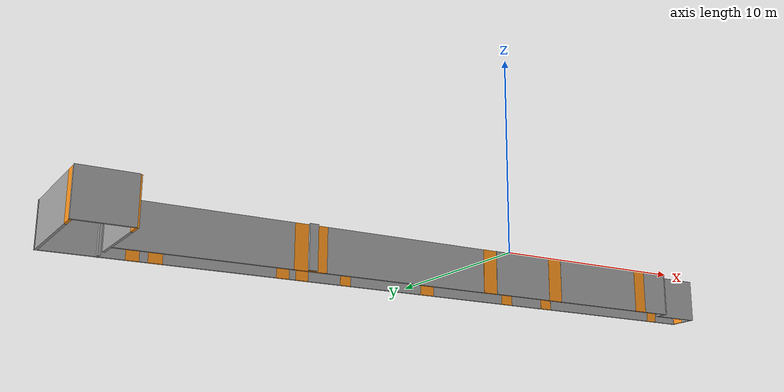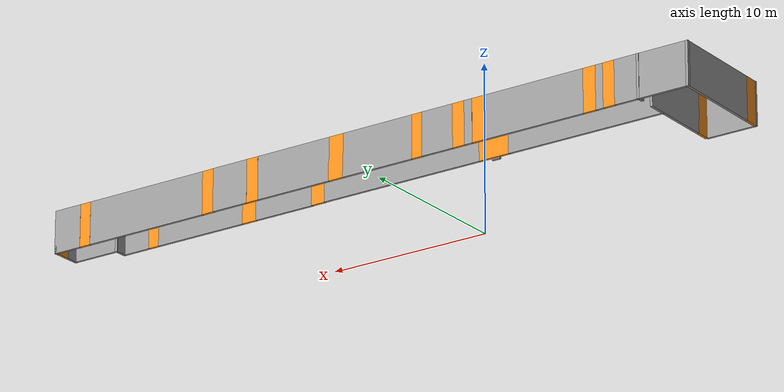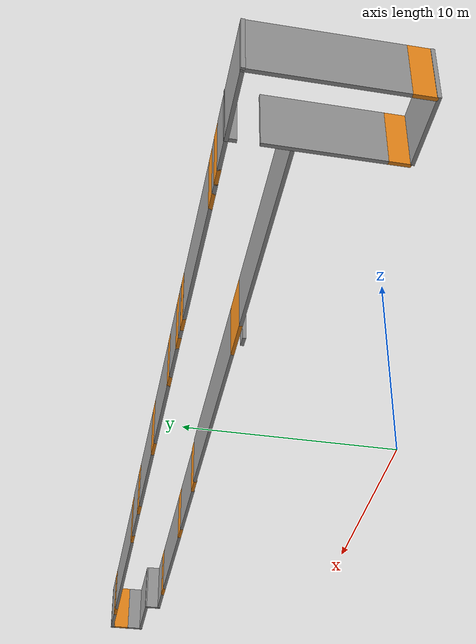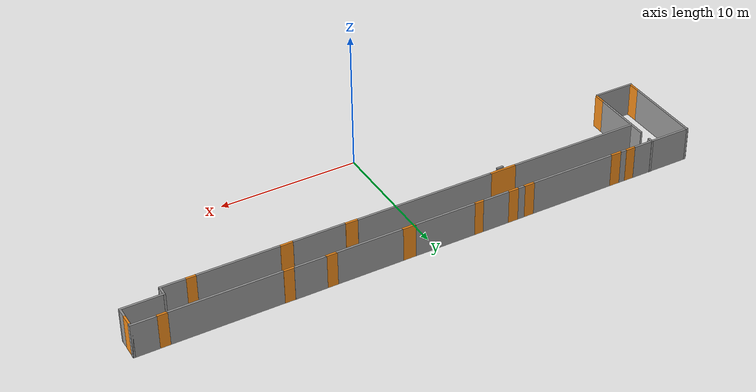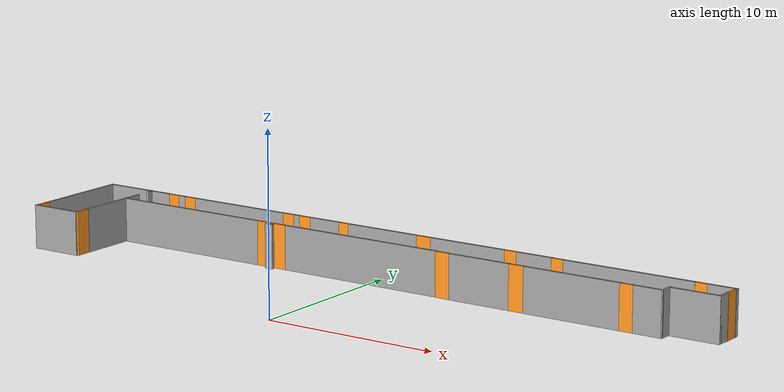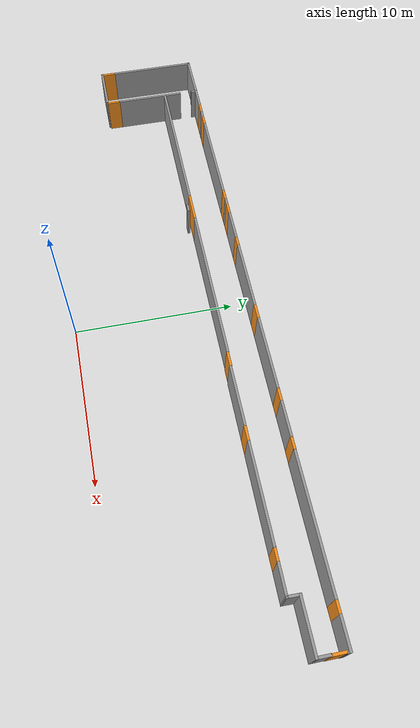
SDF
<?xml version='1.0'?>
<sdf version='1.7'>
  <model name='mundo_definitivo_piso1'>
    <pose>0.752962 -0.165006 0 0 -0 0</pose>
    <link name='Wall_16'>
      <collision name='Wall_16_Collision'>
        <geometry>
          <box>
            <size>5.68966 0.15 2.5</size>
          </box>
        </geometry>
        <pose>0 0 1.25 0 -0 0</pose>
      </collision>
      <visual name='Wall_16_Visual'>
        <pose>0 0 1.25 0 -0 0</pose>
        <geometry>
          <box>
            <size>5.68966 0.15 2.5</size>
          </box>
        </geometry>
        <material>
          <script>
            <uri>file://media/materials/scripts/gazebo.material</uri>
            <name>Gazebo/Grey</name>
          </script>
          <ambient>1 1 1 1</ambient>
        </material>
        <meta>
          <layer>0</layer>
        </meta>
      </visual>
      <pose>-20.6294 8.43018 0 0 -0 -1.5708</pose>
    </link>
    <link name='Wall_18'>
      <collision name='Wall_18_Collision'>
        <geometry>
          <box>
            <size>4.5 0.15 2.5</size>
          </box>
        </geometry>
        <pose>0 0 1.25 0 -0 0</pose>
      </collision>
      <visual name='Wall_18_Visual'>
        <pose>0 0 1.25 0 -0 0</pose>
        <geometry>
          <box>
            <size>4.5 0.15 2.5</size>
          </box>
        </geometry>
        <material>
          <script>
            <uri>file://media/materials/scripts/gazebo.material</uri>
            <name>Gazebo/Grey</name>
          </script>
          <ambient>1 1 1 1</ambient>
        </material>
        <meta>
          <layer>0</layer>
        </meta>
      </visual>
      <pose>-17.6889 7.78714 0 0 -0 -1.5708</pose>
    </link>
    <link name='Wall_20'>
      <collision name='Wall_20_Collision'>
        <geometry>
          <box>
            <size>3 0.15 2.5</size>
          </box>
        </geometry>
        <pose>0 0 1.25 0 -0 0</pose>
      </collision>
      <visual name='Wall_20_Visual'>
        <pose>0 0 1.25 0 -0 0</pose>
        <geometry>
          <box>
            <size>3 0.15 2.5</size>
          </box>
        </geometry>
        <material>
          <script>
            <uri>file://media/materials/scripts/gazebo.material</uri>
            <name>Gazebo/Grey</name>
          </script>
          <ambient>1 1 1 1</ambient>
        </material>
        <meta>
          <layer>0</layer>
        </meta>
      </visual>
      <pose>-19.2206 4.69238 0 0 -0 0</pose>
    </link>
    <link name='Wall_24'>
      <collision name='Wall_24_Collision'>
        <geometry>
          <box>
            <size>0.459773 0.15 2.5</size>
          </box>
        </geometry>
        <pose>0 0 1.25 0 -0 0</pose>
      </collision>
      <visual name='Wall_24_Visual'>
        <pose>0 0 1.25 0 -0 0</pose>
        <geometry>
          <box>
            <size>0.459773 0.15 2.5</size>
          </box>
        </geometry>
        <material>
          <script>
            <uri>file://media/materials/scripts/gazebo.material</uri>
            <name>Gazebo/Grey</name>
          </script>
          <ambient>1 1 1 1</ambient>
        </material>
        <meta>
          <layer>0</layer>
        </meta>
      </visual>
      <pose>-17.6875 11.0652 0 0 -0 -1.5708</pose>
    </link>
    <link name='Wall_26'>
      <collision name='Wall_26_Collision'>
        <geometry>
          <box>
            <size>3.11204 0.15 2.5</size>
          </box>
        </geometry>
        <pose>0 0 1.25 0 -0 0</pose>
      </collision>
      <visual name='Wall_26_Visual'>
        <pose>0 0 1.25 0 -0 0</pose>
        <geometry>
          <box>
            <size>3.11204 0.15 2.5</size>
          </box>
        </geometry>
        <material>
          <script>
            <uri>file://media/materials/scripts/gazebo.material</uri>
            <name>Gazebo/Grey</name>
          </script>
          <ambient>1 1 1 1</ambient>
        </material>
        <meta>
          <layer>0</layer>
        </meta>
      </visual>
      <pose>-19.1685 11.2 0 0 -0 0</pose>
    </link>
    <link name='Wall_29'>
      <collision name='Wall_29_Collision'>
        <geometry>
          <box>
            <size>1.5 0.15 2.5</size>
          </box>
        </geometry>
        <pose>0 0 1.25 0 -0 0</pose>
      </collision>
      <visual name='Wall_29_Visual'>
        <pose>0 0 1.25 0 -0 0</pose>
        <geometry>
          <box>
            <size>1.5 0.15 2.5</size>
          </box>
        </geometry>
        <material>
          <script>
            <uri>file://media/materials/scripts/gazebo.material</uri>
            <name>Gazebo/Grey</name>
          </script>
          <ambient>1 1 1 1</ambient>
        </material>
        <meta>
          <layer>0</layer>
        </meta>
      </visual>
      <pose>-17.0125 11.2 0 0 -0 0</pose>
    </link>
    <link name='Wall_31'>
      <collision name='Wall_31_Collision'>
        <geometry>
          <box>
            <size>0.5 0.15 2.5</size>
          </box>
        </geometry>
        <pose>0 0 1.25 0 -0 0</pose>
      </collision>
      <visual name='Wall_31_Visual'>
        <pose>0 0 1.25 0 -0 0</pose>
        <geometry>
          <box>
            <size>0.5 0.15 2.5</size>
          </box>
        </geometry>
        <material>
          <script>
            <uri>file://media/materials/scripts/gazebo.material</uri>
            <name>Gazebo/Grey</name>
          </script>
          <ambient>1 1 1 1</ambient>
        </material>
        <meta>
          <layer>0</layer>
        </meta>
      </visual>
      <pose>-15.3618 11.1888 0 0 -0 0</pose>
    </link>
    <link name='Wall_33'>
      <collision name='Wall_33_Collision'>
        <geometry>
          <box>
            <size>6.25 0.15 2.5</size>
          </box>
        </geometry>
        <pose>0 0 1.25 0 -0 0</pose>
      </collision>
      <visual name='Wall_33_Visual'>
        <pose>0 0 1.25 0 -0 0</pose>
        <geometry>
          <box>
            <size>6.25 0.15 2.5</size>
          </box>
        </geometry>
        <material>
          <script>
            <uri>file://media/materials/scripts/gazebo.material</uri>
            <name>Gazebo/Grey</name>
          </script>
          <ambient>1 1 1 1</ambient>
        </material>
        <meta>
          <layer>0</layer>
        </meta>
      </visual>
      <pose>-11.275 11.1839 0 0 -0 0</pose>
    </link>
    <link name='Wall_35'>
      <collision name='Wall_35_Collision'>
        <geometry>
          <box>
            <size>0.5 0.15 2.5</size>
          </box>
        </geometry>
        <pose>0 0 1.25 0 -0 0</pose>
      </collision>
      <visual name='Wall_35_Visual'>
        <pose>0 0 1.25 0 -0 0</pose>
        <geometry>
          <box>
            <size>0.5 0.15 2.5</size>
          </box>
        </geometry>
        <material>
          <script>
            <uri>file://media/materials/scripts/gazebo.material</uri>
            <name>Gazebo/Grey</name>
          </script>
          <ambient>1 1 1 1</ambient>
        </material>
        <meta>
          <layer>0</layer>
        </meta>
      </visual>
      <pose>-7.21577 11.1936 0 0 -0 0</pose>
    </link>
    <link name='Wall_37'>
      <collision name='Wall_37_Collision'>
        <geometry>
          <box>
            <size>2 0.15 2.5</size>
          </box>
        </geometry>
        <pose>0 0 1.25 0 -0 0</pose>
      </collision>
      <visual name='Wall_37_Visual'>
        <pose>0 0 1.25 0 -0 0</pose>
        <geometry>
          <box>
            <size>2 0.15 2.5</size>
          </box>
        </geometry>
        <material>
          <script>
            <uri>file://media/materials/scripts/gazebo.material</uri>
            <name>Gazebo/Grey</name>
          </script>
          <ambient>1 1 1 1</ambient>
        </material>
        <meta>
          <layer>0</layer>
        </meta>
      </visual>
      <pose>-5.28271 11.1912 0 0 -0 0</pose>
    </link>
    <link name='Wall_39'>
      <collision name='Wall_39_Collision'>
        <geometry>
          <box>
            <size>4.5 0.15 2.5</size>
          </box>
        </geometry>
        <pose>0 0 1.25 0 -0 0</pose>
      </collision>
      <visual name='Wall_39_Visual'>
        <pose>0 0 1.25 0 -0 0</pose>
        <geometry>
          <box>
            <size>4.5 0.15 2.5</size>
          </box>
        </geometry>
        <material>
          <script>
            <uri>file://media/materials/scripts/gazebo.material</uri>
            <name>Gazebo/Grey</name>
          </script>
          <ambient>1 1 1 1</ambient>
        </material>
        <meta>
          <layer>0</layer>
        </meta>
      </visual>
      <pose>-1.43745 11.1862 0 0 -0 0</pose>
    </link>
    <link name='Wall_41'>
      <collision name='Wall_41_Collision'>
        <geometry>
          <box>
            <size>4.75 0.15 2.5</size>
          </box>
        </geometry>
        <pose>0 0 1.25 0 -0 0</pose>
      </collision>
      <visual name='Wall_41_Visual'>
        <pose>0 0 1.25 0 -0 0</pose>
        <geometry>
          <box>
            <size>4.75 0.15 2.5</size>
          </box>
        </geometry>
        <material>
          <script>
            <uri>file://media/materials/scripts/gazebo.material</uri>
            <name>Gazebo/Grey</name>
          </script>
          <ambient>1 1 1 1</ambient>
        </material>
        <meta>
          <layer>0</layer>
        </meta>
      </visual>
      <pose>4.05209 11.1862 0 0 -0 0</pose>
    </link>
    <link name='Wall_43'>
      <collision name='Wall_43_Collision'>
        <geometry>
          <box>
            <size>2.25 0.15 2.5</size>
          </box>
        </geometry>
        <pose>0 0 1.25 0 -0 0</pose>
      </collision>
      <visual name='Wall_43_Visual'>
        <pose>0 0 1.25 0 -0 0</pose>
        <geometry>
          <box>
            <size>2.25 0.15 2.5</size>
          </box>
        </geometry>
        <material>
          <script>
            <uri>file://media/materials/scripts/gazebo.material</uri>
            <name>Gazebo/Grey</name>
          </script>
          <ambient>1 1 1 1</ambient>
        </material>
        <meta>
          <layer>0</layer>
        </meta>
      </visual>
      <pose>8.2412 11.1912 0 0 -0 0</pose>
    </link>
    <link name='Wall_45'>
      <collision name='Wall_45_Collision'>
        <geometry>
          <box>
            <size>7.75 0.15 2.5</size>
          </box>
        </geometry>
        <pose>0 0 1.25 0 -0 0</pose>
      </collision>
      <visual name='Wall_45_Visual'>
        <pose>0 0 1.25 0 -0 0</pose>
        <geometry>
          <box>
            <size>7.75 0.15 2.5</size>
          </box>
        </geometry>
        <material>
          <script>
            <uri>file://media/materials/scripts/gazebo.material</uri>
            <name>Gazebo/Grey</name>
          </script>
          <ambient>1 1 1 1</ambient>
        </material>
        <meta>
          <layer>0</layer>
        </meta>
      </visual>
      <pose>13.9171 11.1713 0 0 -0 0</pose>
    </link>
    <link name='Wall_47'>
      <collision name='Wall_47_Collision'>
        <geometry>
          <box>
            <size>1.75 0.15 2.5</size>
          </box>
        </geometry>
        <pose>0 0 1.25 0 -0 0</pose>
      </collision>
      <visual name='Wall_47_Visual'>
        <pose>0 0 1.25 0 -0 0</pose>
        <geometry>
          <box>
            <size>1.75 0.15 2.5</size>
          </box>
        </geometry>
        <material>
          <script>
            <uri>file://media/materials/scripts/gazebo.material</uri>
            <name>Gazebo/Grey</name>
          </script>
          <ambient>1 1 1 1</ambient>
        </material>
        <meta>
          <layer>0</layer>
        </meta>
      </visual>
      <pose>19.3098 11.1778 0 0 -0 0</pose>
    </link>
    <link name='Wall_48'>
      <collision name='Wall_48_Collision'>
        <geometry>
          <box>
            <size>0.25 0.15 2.5</size>
          </box>
        </geometry>
        <pose>0 0 1.25 0 -0 0</pose>
      </collision>
      <visual name='Wall_48_Visual'>
        <pose>0 0 1.25 0 -0 0</pose>
        <geometry>
          <box>
            <size>0.25 0.15 2.5</size>
          </box>
        </geometry>
        <material>
          <script>
            <uri>file://media/materials/scripts/gazebo.material</uri>
            <name>Gazebo/Grey</name>
          </script>
          <ambient>1 1 1 1</ambient>
        </material>
        <meta>
          <layer>0</layer>
        </meta>
      </visual>
      <pose>20.1098 11.1278 0 0 -0 -1.5708</pose>
    </link>
    <link name='Wall_59'>
      <collision name='Wall_59_Collision'>
        <geometry>
          <box>
            <size>0.828261 0.15 2.5</size>
          </box>
        </geometry>
        <pose>0 0 1.25 0 -0 0</pose>
      </collision>
      <visual name='Wall_59_Visual'>
        <pose>0 0 1.25 0 -0 0</pose>
        <geometry>
          <box>
            <size>0.828261 0.15 2.5</size>
          </box>
        </geometry>
        <material>
          <script>
            <uri>file://media/materials/scripts/gazebo.material</uri>
            <name>Gazebo/Grey</name>
          </script>
          <ambient>1 1 1 1</ambient>
        </material>
        <meta>
          <layer>0</layer>
        </meta>
      </visual>
      <pose>20.075 9.86476 0 0 -0 -1.5708</pose>
    </link>
    <link name='Wall_65'>
      <collision name='Wall_65_Collision'>
        <geometry>
          <box>
            <size>1.76748 0.15 2.5</size>
          </box>
        </geometry>
        <pose>0 0 1.25 0 -0 0</pose>
      </collision>
      <visual name='Wall_65_Visual'>
        <pose>0 0 1.25 0 -0 0</pose>
        <geometry>
          <box>
            <size>1.76748 0.15 2.5</size>
          </box>
        </geometry>
        <material>
          <script>
            <uri>file://media/materials/scripts/gazebo.material</uri>
            <name>Gazebo/Grey</name>
          </script>
          <ambient>1 1 1 1</ambient>
        </material>
        <meta>
          <layer>0</layer>
        </meta>
      </visual>
      <pose>16.3989 8.83432 0 0 -0 3.13622</pose>
    </link>
    <link name='Wall_68'>
      <collision name='Wall_68_Collision'>
        <geometry>
          <box>
            <size>3 0.15 2.5</size>
          </box>
        </geometry>
        <pose>0 0 1.25 0 -0 0</pose>
      </collision>
      <visual name='Wall_68_Visual'>
        <pose>0 0 1.25 0 -0 0</pose>
        <geometry>
          <box>
            <size>3 0.15 2.5</size>
          </box>
        </geometry>
        <material>
          <script>
            <uri>file://media/materials/scripts/gazebo.material</uri>
            <name>Gazebo/Grey</name>
          </script>
          <ambient>1 1 1 1</ambient>
        </material>
        <meta>
          <layer>0</layer>
        </meta>
      </visual>
      <pose>18.65 9.51693 0 0 -0 3.14159</pose>
    </link>
    <link name='Wall_69'>
      <collision name='Wall_69_Collision'>
        <geometry>
          <box>
            <size>0.84587 0.15 2.5</size>
          </box>
        </geometry>
        <pose>0 0 1.25 0 -0 0</pose>
      </collision>
      <visual name='Wall_69_Visual'>
        <pose>0 0 1.25 0 -0 0</pose>
        <geometry>
          <box>
            <size>0.84587 0.15 2.5</size>
          </box>
        </geometry>
        <material>
          <script>
            <uri>file://media/materials/scripts/gazebo.material</uri>
            <name>Gazebo/Grey</name>
          </script>
          <ambient>1 1 1 1</ambient>
        </material>
        <meta>
          <layer>0</layer>
        </meta>
      </visual>
      <pose>17.2163 9.1778 0 0 -0 -1.59579</pose>
    </link>
    <link name='Wall_71'>
      <collision name='Wall_71_Collision'>
        <geometry>
          <box>
            <size>5.75 0.15 2.5</size>
          </box>
        </geometry>
        <pose>0 0 1.25 0 -0 0</pose>
      </collision>
      <visual name='Wall_71_Visual'>
        <pose>0 0 1.25 0 -0 0</pose>
        <geometry>
          <box>
            <size>5.75 0.15 2.5</size>
          </box>
        </geometry>
        <material>
          <script>
            <uri>file://media/materials/scripts/gazebo.material</uri>
            <name>Gazebo/Grey</name>
          </script>
          <ambient>1 1 1 1</ambient>
        </material>
        <meta>
          <layer>0</layer>
        </meta>
      </visual>
      <pose>11.9619 8.83867 0 0 -0 3.14159</pose>
    </link>
    <link name='Wall_73'>
      <collision name='Wall_73_Collision'>
        <geometry>
          <box>
            <size>3.75 0.15 2.5</size>
          </box>
        </geometry>
        <pose>0 0 1.25 0 -0 0</pose>
      </collision>
      <visual name='Wall_73_Visual'>
        <pose>0 0 1.25 0 -0 0</pose>
        <geometry>
          <box>
            <size>3.75 0.15 2.5</size>
          </box>
        </geometry>
        <material>
          <script>
            <uri>file://media/materials/scripts/gazebo.material</uri>
            <name>Gazebo/Grey</name>
          </script>
          <ambient>1 1 1 1</ambient>
        </material>
        <meta>
          <layer>0</layer>
        </meta>
      </visual>
      <pose>6.37063 8.84737 0 0 -0 3.14159</pose>
    </link>
    <link name='Wall_75'>
      <collision name='Wall_75_Collision'>
        <geometry>
          <box>
            <size>10 0.15 2.5</size>
          </box>
        </geometry>
        <pose>0 0 1.25 0 -0 0</pose>
      </collision>
      <visual name='Wall_75_Visual'>
        <pose>0 0 1.25 0 -0 0</pose>
        <geometry>
          <box>
            <size>10 0.15 2.5</size>
          </box>
        </geometry>
        <material>
          <script>
            <uri>file://media/materials/scripts/gazebo.material</uri>
            <name>Gazebo/Grey</name>
          </script>
          <ambient>1 1 1 1</ambient>
        </material>
        <meta>
          <layer>0</layer>
        </meta>
      </visual>
      <pose>-1.33077 8.89495 0 0 -0 3.14159</pose>
    </link>
    <link name='Wall_77'>
      <collision name='Wall_77_Collision'>
        <geometry>
          <box>
            <size>0.5 0.15 2.5</size>
          </box>
        </geometry>
        <pose>0 0 1.25 0 -0 0</pose>
      </collision>
      <visual name='Wall_77_Visual'>
        <pose>0 0 1.25 0 -0 0</pose>
        <geometry>
          <box>
            <size>0.5 0.15 2.5</size>
          </box>
        </geometry>
        <material>
          <script>
            <uri>file://media/materials/scripts/gazebo.material</uri>
            <name>Gazebo/Grey</name>
          </script>
          <ambient>1 1 1 1</ambient>
        </material>
        <meta>
          <layer>0</layer>
        </meta>
      </visual>
      <pose>-7.19724 8.61511 0 0 -0 3.14159</pose>
    </link>
    <link name='Wall_79'>
      <collision name='Wall_79_Collision'>
        <geometry>
          <box>
            <size>9.5 0.15 2.5</size>
          </box>
        </geometry>
        <pose>0 0 1.25 0 -0 0</pose>
      </collision>
      <visual name='Wall_79_Visual'>
        <pose>0 0 1.25 0 -0 0</pose>
        <geometry>
          <box>
            <size>9.5 0.15 2.5</size>
          </box>
        </geometry>
        <material>
          <script>
            <uri>file://media/materials/scripts/gazebo.material</uri>
            <name>Gazebo/Grey</name>
          </script>
          <ambient>1 1 1 1</ambient>
        </material>
        <meta>
          <layer>0</layer>
        </meta>
      </visual>
      <pose>-12.9215 8.89495 0 0 -0 3.14159</pose>
    </link>

    <!-- LIMITES SINTETICOS (2026-08-24)                                     -->
    <!-- Estos DIECISEIS paneles NO existen en el edificio: son las puertas   -->
    <!-- de las salas que este modelo no incluye. Van en naranja justamente   -->
    <!-- para que se distingan a simple vista de los muros reales, que son    -->
    <!-- grises, y para que nadie los confunda con geometria medida.          -->
    <!-- POR QUE SE ANADEN. Sin ellos el recinto esta abierto por dieciseis   -->
    <!-- sitios: el generador de mapas veia el pasillo abierto y el relleno   -->
    <!-- por inundacion se escapaba al ground_plane infinito. El mapa salia   -->
    <!-- con un vestibulo fantasma de 38 m al sur, y el 2026-08-24 el         -->
    <!-- planificador trazo por el la diagonal piso1_representacion ->        -->
    <!-- piso1_etm10: mas corta (38,4 m frente a ~42 m por el pasillo) y      -->
    <!-- completamente inexistente. Nav2 ABORTED a los 137 s con el robot     -->
    <!-- fuera del edificio.                                                  -->
    <!-- POR QUE PANELES Y NO ESPACIO DESCONOCIDO. Nav2 infla los obstaculos  -->
    <!-- LETHAL pero NO las celdas NO_INFORMATION. Dejar el vano como         -->
    <!-- desconocido lo cierra al planificador pero sin colchon; un panel le  -->
    <!-- da los 0,55 m de inflation_radius. Ademas el LiDAR ve el panel, asi  -->
    <!-- que AMCL no se degrada cada vez que el robot pasa por delante de una -->
    <!-- puerta, que es lo que pasaba cuando el rayo se perdia en el vacio.   -->
    <!-- COMO SE OBTUVIERON. Analiticamente, no a ojo: los extremos de cada   -->
    <!-- panel son las caras de los dos Wall_* vecinos, mas 0,05 m de solape  -->
    <!-- por lado. Sin solape queda una rendija de menos de una celda por la  -->
    <!-- que el relleno se cuela igual. Los centros calculados coinciden con  -->
    <!-- los destinos de config/puntos_interes.yaml con menos de 2 cm de      -->
    <!-- diferencia, lo que valida las dos listas a la vez.                   -->
    <!-- CRITERIO DE CIERRE. Regenerar el mapa SIN pasar la opcion region:      -->
    <!-- mundo esta de verdad sellado, el relleno se contiene solo.           -->
    <!-- piso1_etm1 -->
    <link name='Limite_vano_etm1'>
      <collision name='Limite_vano_etm1_Collision'>
        <geometry>
          <box>
            <size>0.75070 0.15 2.5</size>
          </box>
        </geometry>
        <pose>0 0 1.25 0 -0 0</pose>
      </collision>
      <visual name='Limite_vano_etm1_Visual'>
        <pose>0 0 1.25 0 -0 0</pose>
        <geometry>
          <box>
            <size>0.75070 0.15 2.5</size>
          </box>
        </geometry>
        <material>
          <script>
            <uri>file://media/materials/scripts/gazebo.material</uri>
            <name>Gazebo/Orange</name>
          </script>
          <ambient>1 0.5 0 1</ambient>
        </material>
        <meta>
          <layer>0</layer>
        </meta>
      </visual>
      <pose>-15.9371 11.19440 0 0 -0 0</pose>
    </link>
    <!-- piso1_etm2 -->
    <link name='Limite_vano_etm2'>
      <collision name='Limite_vano_etm2_Collision'>
        <geometry>
          <box>
            <size>0.81180 0.15 2.5</size>
          </box>
        </geometry>
        <pose>0 0 1.25 0 -0 0</pose>
      </collision>
      <visual name='Limite_vano_etm2_Visual'>
        <pose>0 0 1.25 0 -0 0</pose>
        <geometry>
          <box>
            <size>0.81180 0.15 2.5</size>
          </box>
        </geometry>
        <material>
          <script>
            <uri>file://media/materials/scripts/gazebo.material</uri>
            <name>Gazebo/Orange</name>
          </script>
          <ambient>1 0.5 0 1</ambient>
        </material>
        <meta>
          <layer>0</layer>
        </meta>
      </visual>
      <pose>-14.7559 11.18635 0 0 -0 0</pose>
    </link>
    <!-- piso1_etm3 -->
    <link name='Limite_vano_etm3'>
      <collision name='Limite_vano_etm3_Collision'>
        <geometry>
          <box>
            <size>0.78423 0.15 2.5</size>
          </box>
        </geometry>
        <pose>0 0 1.25 0 -0 0</pose>
      </collision>
      <visual name='Limite_vano_etm3_Visual'>
        <pose>0 0 1.25 0 -0 0</pose>
        <geometry>
          <box>
            <size>0.78423 0.15 2.5</size>
          </box>
        </geometry>
        <material>
          <script>
            <uri>file://media/materials/scripts/gazebo.material</uri>
            <name>Gazebo/Orange</name>
          </script>
          <ambient>1 0.5 0 1</ambient>
        </material>
        <meta>
          <layer>0</layer>
        </meta>
      </visual>
      <pose>-7.8079 11.18875 0 0 -0 0</pose>
    </link>
    <!-- piso1_etm4 -->
    <link name='Limite_vano_etm4'>
      <collision name='Limite_vano_etm4_Collision'>
        <geometry>
          <box>
            <size>0.78306 0.15 2.5</size>
          </box>
        </geometry>
        <pose>0 0 1.25 0 -0 0</pose>
      </collision>
      <visual name='Limite_vano_etm4_Visual'>
        <pose>0 0 1.25 0 -0 0</pose>
        <geometry>
          <box>
            <size>0.78306 0.15 2.5</size>
          </box>
        </geometry>
        <material>
          <script>
            <uri>file://media/materials/scripts/gazebo.material</uri>
            <name>Gazebo/Orange</name>
          </script>
          <ambient>1 0.5 0 1</ambient>
        </material>
        <meta>
          <layer>0</layer>
        </meta>
      </visual>
      <pose>-6.6242 11.19240 0 0 -0 0</pose>
    </link>
    <!-- piso1_etm5 -->
    <link name='Limite_vano_etm5'>
      <collision name='Limite_vano_etm5_Collision'>
        <geometry>
          <box>
            <size>0.69526 0.15 2.5</size>
          </box>
        </geometry>
        <pose>0 0 1.25 0 -0 0</pose>
      </collision>
      <visual name='Limite_vano_etm5_Visual'>
        <pose>0 0 1.25 0 -0 0</pose>
        <geometry>
          <box>
            <size>0.69526 0.15 2.5</size>
          </box>
        </geometry>
        <material>
          <script>
            <uri>file://media/materials/scripts/gazebo.material</uri>
            <name>Gazebo/Orange</name>
          </script>
          <ambient>1 0.5 0 1</ambient>
        </material>
        <meta>
          <layer>0</layer>
        </meta>
      </visual>
      <pose>-3.9851 11.18870 0 0 -0 0</pose>
    </link>
    <!-- piso1_etm6 -->
    <link name='Limite_vano_etm6'>
      <collision name='Limite_vano_etm6_Collision'>
        <geometry>
          <box>
            <size>0.96454 0.15 2.5</size>
          </box>
        </geometry>
        <pose>0 0 1.25 0 -0 0</pose>
      </collision>
      <visual name='Limite_vano_etm6_Visual'>
        <pose>0 0 1.25 0 -0 0</pose>
        <geometry>
          <box>
            <size>0.96454 0.15 2.5</size>
          </box>
        </geometry>
        <material>
          <script>
            <uri>file://media/materials/scripts/gazebo.material</uri>
            <name>Gazebo/Orange</name>
          </script>
          <ambient>1 0.5 0 1</ambient>
        </material>
        <meta>
          <layer>0</layer>
        </meta>
      </visual>
      <pose>1.2448 11.18620 0 0 -0 0</pose>
    </link>
    <!-- piso1_etm7 -->
    <link name='Limite_vano_etm7'>
      <collision name='Limite_vano_etm7_Collision'>
        <geometry>
          <box>
            <size>0.78911 0.15 2.5</size>
          </box>
        </geometry>
        <pose>0 0 1.25 0 -0 0</pose>
      </collision>
      <visual name='Limite_vano_etm7_Visual'>
        <pose>0 0 1.25 0 -0 0</pose>
        <geometry>
          <box>
            <size>0.78911 0.15 2.5</size>
          </box>
        </geometry>
        <material>
          <script>
            <uri>file://media/materials/scripts/gazebo.material</uri>
            <name>Gazebo/Orange</name>
          </script>
          <ambient>1 0.5 0 1</ambient>
        </material>
        <meta>
          <layer>0</layer>
        </meta>
      </visual>
      <pose>6.7716 11.18870 0 0 -0 0</pose>
    </link>
    <!-- piso1_etm8 -->
    <link name='Limite_vano_etm8'>
      <collision name='Limite_vano_etm8_Collision'>
        <geometry>
          <box>
            <size>0.77590 0.15 2.5</size>
          </box>
        </geometry>
        <pose>0 0 1.25 0 -0 0</pose>
      </collision>
      <visual name='Limite_vano_etm8_Visual'>
        <pose>0 0 1.25 0 -0 0</pose>
        <geometry>
          <box>
            <size>0.77590 0.15 2.5</size>
          </box>
        </geometry>
        <material>
          <script>
            <uri>file://media/materials/scripts/gazebo.material</uri>
            <name>Gazebo/Orange</name>
          </script>
          <ambient>1 0.5 0 1</ambient>
        </material>
        <meta>
          <layer>0</layer>
        </meta>
      </visual>
      <pose>9.7041 11.18125 0 0 -0 0</pose>
    </link>
    <!-- piso1_etm9 -->
    <link name='Limite_vano_etm9'>
      <collision name='Limite_vano_etm9_Collision'>
        <geometry>
          <box>
            <size>0.74270 0.15 2.5</size>
          </box>
        </geometry>
        <pose>0 0 1.25 0 -0 0</pose>
      </collision>
      <visual name='Limite_vano_etm9_Visual'>
        <pose>0 0 1.25 0 -0 0</pose>
        <geometry>
          <box>
            <size>0.74270 0.15 2.5</size>
          </box>
        </geometry>
        <material>
          <script>
            <uri>file://media/materials/scripts/gazebo.material</uri>
            <name>Gazebo/Orange</name>
          </script>
          <ambient>1 0.5 0 1</ambient>
        </material>
        <meta>
          <layer>0</layer>
        </meta>
      </visual>
      <pose>18.1135 11.17455 0 0 -0 0</pose>
    </link>
    <!-- piso1_etm13 -->
    <link name='Limite_vano_etm13'>
      <collision name='Limite_vano_etm13_Collision'>
        <geometry>
          <box>
            <size>1.94073 0.15 2.5</size>
          </box>
        </geometry>
        <pose>0 0 1.25 0 -0 0</pose>
      </collision>
      <visual name='Limite_vano_etm13_Visual'>
        <pose>0 0 1.25 0 -0 0</pose>
        <geometry>
          <box>
            <size>1.94073 0.15 2.5</size>
          </box>
        </geometry>
        <material>
          <script>
            <uri>file://media/materials/scripts/gazebo.material</uri>
            <name>Gazebo/Orange</name>
          </script>
          <ambient>1 0.5 0 1</ambient>
        </material>
        <meta>
          <layer>0</layer>
        </meta>
      </visual>
      <pose>-7.2511 8.89495 0 0 -0 0</pose>
    </link>
    <!-- piso1_etm11 -->
    <link name='Limite_vano_etm11'>
      <collision name='Limite_vano_etm11_Collision'>
        <geometry>
          <box>
            <size>0.92640 0.15 2.5</size>
          </box>
        </geometry>
        <pose>0 0 1.25 0 -0 0</pose>
      </collision>
      <visual name='Limite_vano_etm11_Visual'>
        <pose>0 0 1.25 0 -0 0</pose>
        <geometry>
          <box>
            <size>0.92640 0.15 2.5</size>
          </box>
        </geometry>
        <material>
          <script>
            <uri>file://media/materials/scripts/gazebo.material</uri>
            <name>Gazebo/Orange</name>
          </script>
          <ambient>1 0.5 0 1</ambient>
        </material>
        <meta>
          <layer>0</layer>
        </meta>
      </visual>
      <pose>4.0824 8.87116 0 0 -0 0</pose>
    </link>
    <!-- sin destino: descartado a mano en puntos_interes.yaml -->
    <link name='Limite_vano_sur_x87'>
      <collision name='Limite_vano_sur_x87_Collision'>
        <geometry>
          <box>
            <size>0.94127 0.15 2.5</size>
          </box>
        </geometry>
        <pose>0 0 1.25 0 -0 0</pose>
      </collision>
      <visual name='Limite_vano_sur_x87_Visual'>
        <pose>0 0 1.25 0 -0 0</pose>
        <geometry>
          <box>
            <size>0.94127 0.15 2.5</size>
          </box>
        </geometry>
        <material>
          <script>
            <uri>file://media/materials/scripts/gazebo.material</uri>
            <name>Gazebo/Orange</name>
          </script>
          <ambient>1 0.5 0 1</ambient>
        </material>
        <meta>
          <layer>0</layer>
        </meta>
      </visual>
      <pose>8.6663 8.84302 0 0 -0 0</pose>
    </link>
    <!-- piso1_almacen -->
    <link name='Limite_vano_almacen'>
      <collision name='Limite_vano_almacen_Collision'>
        <geometry>
          <box>
            <size>0.77787 0.15 2.5</size>
          </box>
        </geometry>
        <pose>0 0 1.25 0 -0 0</pose>
      </collision>
      <visual name='Limite_vano_almacen_Visual'>
        <pose>0 0 1.25 0 -0 0</pose>
        <geometry>
          <box>
            <size>0.77787 0.15 2.5</size>
          </box>
        </geometry>
        <material>
          <script>
            <uri>file://media/materials/scripts/gazebo.material</uri>
            <name>Gazebo/Orange</name>
          </script>
          <ambient>1 0.5 0 1</ambient>
        </material>
        <meta>
          <layer>0</layer>
        </meta>
      </visual>
      <pose>15.1758 8.83649 0 0 -0 0</pose>
    </link>
    <!-- piso1_escalera (punto de transferencia) -->
    <link name='Limite_vano_escalera'>
      <collision name='Limite_vano_escalera_Collision'>
        <geometry>
          <box>
            <size>0.91797 0.15 2.5</size>
          </box>
        </geometry>
        <pose>0 0 1.25 0 -0 0</pose>
      </collision>
      <visual name='Limite_vano_escalera_Visual'>
        <pose>0 0 1.25 0 -0 0</pose>
        <geometry>
          <box>
            <size>0.91797 0.15 2.5</size>
          </box>
        </geometry>
        <material>
          <script>
            <uri>file://media/materials/scripts/gazebo.material</uri>
            <name>Gazebo/Orange</name>
          </script>
          <ambient>1 0.5 0 1</ambient>
        </material>
        <meta>
          <layer>0</layer>
        </meta>
      </visual>
      <pose>-20.6294 5.17636 0 0 -0 -1.5708</pose>
    </link>
    <!-- piso1_representacion -->
    <link name='Limite_vano_representacion'>
      <collision name='Limite_vano_representacion_Collision'>
        <geometry>
          <box>
            <size>0.86976 0.15 2.5</size>
          </box>
        </geometry>
        <pose>0 0 1.25 0 -0 0</pose>
      </collision>
      <visual name='Limite_vano_representacion_Visual'>
        <pose>0 0 1.25 0 -0 0</pose>
        <geometry>
          <box>
            <size>0.86976 0.15 2.5</size>
          </box>
        </geometry>
        <material>
          <script>
            <uri>file://media/materials/scripts/gazebo.material</uri>
            <name>Gazebo/Orange</name>
          </script>
          <ambient>1 0.5 0 1</ambient>
        </material>
        <meta>
          <layer>0</layer>
        </meta>
      </visual>
      <pose>-17.6889 5.15226 0 0 -0 -1.5708</pose>
    </link>
    <!-- piso1_etm10 -->
    <link name='Limite_vano_etm10'>
      <collision name='Limite_vano_etm10_Collision'>
        <geometry>
          <box>
            <size>0.82391 0.15 2.5</size>
          </box>
        </geometry>
        <pose>0 0 1.25 0 -0 0</pose>
      </collision>
      <visual name='Limite_vano_etm10_Visual'>
        <pose>0 0 1.25 0 -0 0</pose>
        <geometry>
          <box>
            <size>0.82391 0.15 2.5</size>
          </box>
        </geometry>
        <material>
          <script>
            <uri>file://media/materials/scripts/gazebo.material</uri>
            <name>Gazebo/Orange</name>
          </script>
          <ambient>1 0.5 0 1</ambient>
        </material>
        <meta>
          <layer>0</layer>
        </meta>
      </visual>
      <pose>20.0924 10.64085 0 0 -0 -1.5708</pose>
    </link>
    <static>1</static>
  </model>
</sdf>
